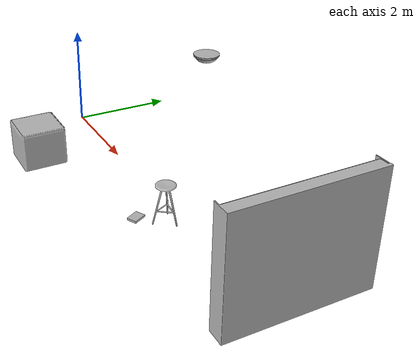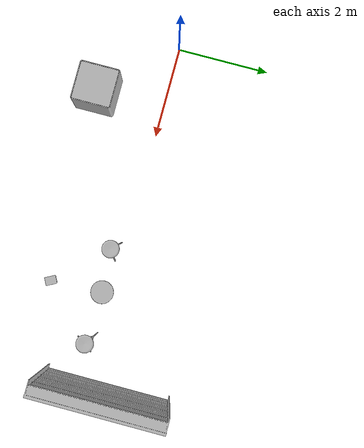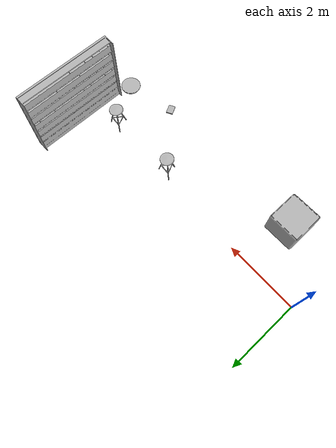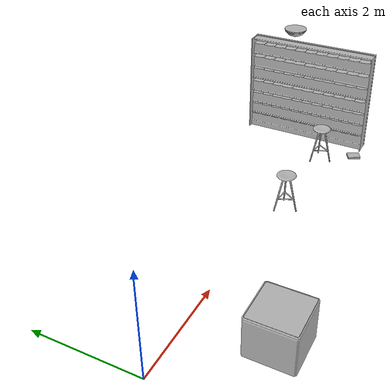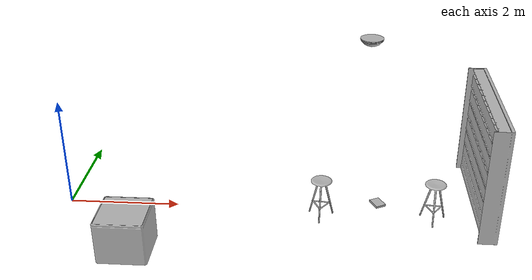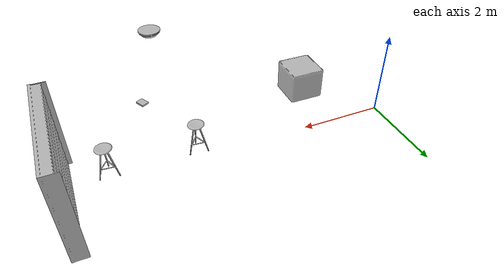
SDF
<sdf version="1.7">
 <world name="default">
  <model name="BookE_01_003">
   <frame name="aws_robomaker_retail_BookE_01::__model__" attached_to="aws_robomaker_retail_BookE_01::link">
    <pose relative_to="__model__">0 0 0 0 -0 0</pose>
   </frame>
   <link name="aws_robomaker_retail_BookE_01::link">
    <inertial>
     <mass>1</mass>
     <inertia><ixy>0</ixy><ixz>0</ixz><iyz>0</iyz><ixx>0.0666</ixx><iyy>0.0346</iyy><izz>0.0986</izz></inertia>
    </inertial>
    <collision name="collision">
     <geometry>
      <mesh>
       <uri>file://models/aws_robomaker_retail_BookE_01/meshes/aws_BookE_01_collision.DAE</uri>
       <scale>1 1 1</scale>
      </mesh>
     </geometry>
    </collision>
    <visual name="visual">
     <geometry>
      <mesh><uri>file://models/aws_robomaker_retail_BookE_01/meshes/aws_BookE_01_visual.DAE</uri></mesh>
     </geometry>
     <meta><layer>1</layer></meta>
    </visual>
    <pose relative_to="aws_robomaker_retail_BookE_01::__model__">0 0 0 0 -0 0</pose>
   </link>
   <static>1</static>
   <pose>5.55255 -1.21421 0.948933 4e-06 -1e-06 -2.65431</pose>
  </model>
  <model name="BookshelfB_01_008">
   <frame name="aws_robomaker_retail_BookshelfB_01::__model__" attached_to="aws_robomaker_retail_BookshelfB_01::link">
    <pose relative_to="__model__">0 0 0 0 -0 0</pose>
   </frame>
   <link name="aws_robomaker_retail_BookshelfB_01::link">
    <inertial>
     <mass>50</mass>
     <inertia><ixx>19.8742</ixx><ixy>0</ixy><ixz>0</ixz><iyy>49.1263</iyy><iyz>0</iyz><izz>30.2231</izz></inertia>
    </inertial>
    <collision name="collision">
     <geometry>
      <mesh>
       <uri>file://models/aws_robomaker_retail_BookshelfB_01/meshes/aws_BookshelfB_01_collision.DAE</uri>
       <scale>1 1 1</scale>
      </mesh>
     </geometry>
    </collision>
    <visual name="visual">
     <geometry>
      <mesh><uri>file://models/aws_robomaker_retail_BookshelfB_01/meshes/aws_BookshelfB_01_visual.DAE</uri></mesh>
     </geometry>
     <meta><layer>1</layer></meta>
    </visual>
    <pose relative_to="aws_robomaker_retail_BookshelfB_01::__model__">0 0 0 0 -0 0</pose>
   </link>
   <static>1</static>
   <pose>7.47833 0.402539 0.017181 3e-06 -0.000156 1.5708</pose>
  </model>
  <model name="BookshelfC_01_001">
   <frame name="aws_robomaker_retail_BookshelfC_01::__model__" attached_to="aws_robomaker_retail_BookshelfC_01::link">
    <pose relative_to="__model__">0 0 0 0 -0 0</pose>
   </frame>
   <link name="aws_robomaker_retail_BookshelfC_01::link">
    <inertial>
     <mass>50</mass>
     <inertia><ixx>5.5865</ixx><ixy>0</ixy><ixz>0</ixz><iyy>5.47324</iyy><iyz>0</iyz><izz>6.23277</izz></inertia>
    </inertial>
    <collision name="collision">
     <geometry>
      <mesh>
       <uri>file://models/aws_robomaker_retail_BookshelfC_01/meshes/aws_BookshelfC_01_collision.DAE</uri>
       <scale>1 1 1</scale>
      </mesh>
     </geometry>
    </collision>
    <visual name="visual">
     <geometry>
      <mesh><uri>file://models/aws_robomaker_retail_BookshelfC_01/meshes/aws_BookshelfC_01_visual.DAE</uri></mesh>
     </geometry>
     <meta><layer>1</layer></meta>
    </visual>
    <pose relative_to="aws_robomaker_retail_BookshelfC_01::__model__">0 0 0 0 -0 0</pose>
   </link>
   <static>1</static>
   <pose>1.40515 -1.44974 0.008469 0.003452 -3e-06 0.00062</pose>
  </model>
  <model name="ChairB_01_001">
   <frame name="aws_robomaker_retail_ChairB_01::__model__" attached_to="aws_robomaker_retail_ChairB_01::link">
    <pose relative_to="__model__">0 0 0 0 -0 0</pose>
   </frame>
   <link name="aws_robomaker_retail_ChairB_01::link">
    <inertial>
     <mass>3</mass>
     <inertia>
      <ixx>0.188185</ixx>
      <ixy>0</ixy>
      <ixz>0</ixz>
      <iyy>0.190617</iyy>
      <iyz>0</iyz>
      <izz>0.100999</izz>
     </inertia>
    </inertial>
    <collision name="collision">
     <geometry>
      <mesh>
       <uri>file://models/aws_robomaker_retail_ChairB_01/meshes/aws_ChairB_01_collision.DAE</uri>
       <scale>1 1 1</scale>
      </mesh>
     </geometry>
    </collision>
    <visual name="visual">
     <geometry>
      <mesh><uri>file://models/aws_robomaker_retail_ChairB_01/meshes/aws_ChairB_01_visual.DAE</uri></mesh>
     </geometry>
     <meta><layer>1</layer></meta>
    </visual>
    <pose relative_to="aws_robomaker_retail_ChairB_01::__model__">0 0 0 0 -0 0</pose>
   </link>
   <static>1</static>
   <pose>6.64396 -0.210457 0.022051 0 0.006174 8.8e-05</pose>
  </model>
  <model name="ChairB_01_005">
   <frame name="aws_robomaker_retail_ChairB_01::__model__" attached_to="aws_robomaker_retail_ChairB_01::link">
    <pose relative_to="__model__">0 0 0 0 -0 0</pose>
   </frame>
   <link name="aws_robomaker_retail_ChairB_01::link">
    <inertial>
     <mass>3</mass>
     <inertia>
      <ixx>0.188185</ixx>
      <ixy>0</ixy>
      <ixz>0</ixz>
      <iyy>0.190617</iyy>
      <iyz>0</iyz>
      <izz>0.100999</izz>
     </inertia>
    </inertial>
    <collision name="collision">
     <geometry>
      <mesh>
       <uri>file://models/aws_robomaker_retail_ChairB_01/meshes/aws_ChairB_01_collision.DAE</uri>
       <scale>1 1 1</scale>
      </mesh>
     </geometry>
    </collision>
    <visual name="visual">
     <geometry>
      <mesh><uri>file://models/aws_robomaker_retail_ChairB_01/meshes/aws_ChairB_01_visual.DAE</uri></mesh>
     </geometry>
     <meta><layer>1</layer></meta>
    </visual>
    <pose relative_to="aws_robomaker_retail_ChairB_01::__model__">0 0 0 0 -0 0</pose>
   </link>
   <static>1</static>
   <pose>4.6533 -0.210457 0.022051 0 0.006174 8.8e-05</pose>
  </model>
  <model name="LightA_01_003">
   <frame name="aws_robomaker_retail_LightA_01::__model__" attached_to="aws_robomaker_retail_LightA_01::link">
    <pose relative_to="__model__">0 0 0 0 -0 0</pose>
   </frame>
   <link name="aws_robomaker_retail_LightA_01::link">
    <inertial><mass>1</mass></inertial>
    <collision name="collision">
     <geometry>
      <mesh>
       <uri>file://models/aws_robomaker_retail_LightA_01/meshes/aws_LightA_01_collision.DAE</uri>
       <scale>1 1 1</scale>
      </mesh>
     </geometry>
    </collision>
    <visual name="visual">
     <geometry>
      <mesh><uri>file://models/aws_robomaker_retail_LightA_01/meshes/aws_LightA_01_visual.DAE</uri></mesh>
     </geometry>
     <meta><layer>3</layer></meta>
    </visual>
    <pose relative_to="aws_robomaker_retail_LightA_01::__model__">0 0 0 0 -0 0</pose>
   </link>
   <static>1</static>
   <pose>5.38399 0.04192 3.15033 0 -0 0</pose>
  </model>
 </world>
</sdf>
